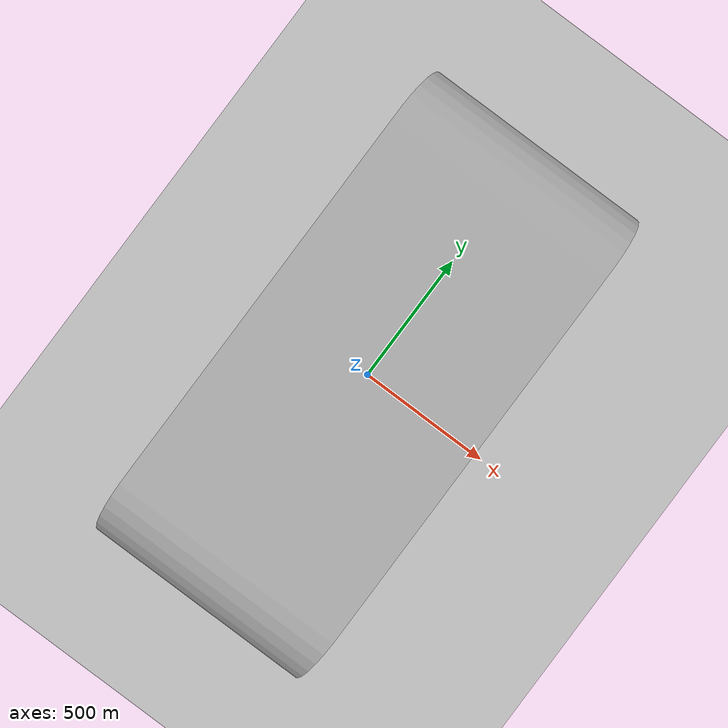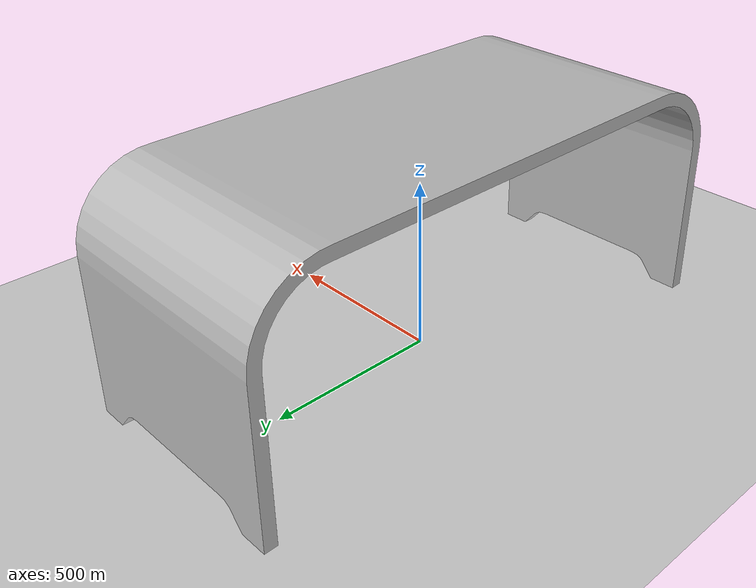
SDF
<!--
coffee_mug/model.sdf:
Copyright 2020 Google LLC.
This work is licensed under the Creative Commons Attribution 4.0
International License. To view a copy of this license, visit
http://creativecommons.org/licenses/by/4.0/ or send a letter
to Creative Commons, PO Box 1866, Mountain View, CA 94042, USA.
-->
<?xml version="1.0" ?>
<sdf version="1.6">
  <world name="visual_servoing">
    <physics name="default_physics" default="0" type="ode">
      <gravity>0 0 -9.8066</gravity>
      <ode>
        <solver>
          <iters>10</iters>
          <sor>1.3</sor>
        </solver>
      </ode>
      <max_step_size>0.01</max_step_size>
    </physics>

    <scene>
      <ambient>0.4 0.4 0.4</ambient>
      <background>0.7 0.7 0.7</background>
    </scene>

    <!-- Ground plane -->
    <include>
      <uri>model://ground plane</uri>
    </include>

    <!-- Sun -->
    <include>
      <uri>model://sun</uri>
    </include>

    <include>
      <uri>model://desk</uri>
      <pose>0 0.5 0 0 0 -1.5707963267</pose>
    </include>

    <include>
      <uri>model://coffee_mug</uri>
      <pose>0 0.4 0.6 0 0 0</pose>
    </include>

    <include>
      <uri>model://coke_can</uri>
      <pose>0.2 0.45 0.8 0 0 0</pose>
    </include>
  </world>
</sdf>

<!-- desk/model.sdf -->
<sdf version="1.5">
  <model name="desk">
    <link name="link">
      <pose>0 0 0 0 0 0</pose>

      <visual name="visual">
        <geometry>
          <mesh><uri>model://desk/meshes/desk.obj</uri></mesh>
        </geometry>
      </visual>

      <!-- 碰撞部分：用简单盒子近似 -->
      <!-- 桌面：扁盒，覆盖桌面区域 -->
      <collision name="tabletop">
        <pose>-0.014 0 0.530 0 0 0</pose>
        <geometry>
          <box>
            <size>0.491 0.844 0.043</size>
          </box>
        </geometry>
      </collision>

      <!-- 四条桌腿（延伸至桌面底部） -->
      <collision name="leg_front_left">
        <pose>-0.239 0.399 0.254 0 0 0</pose>   <!-- 中心高度 = 0.508/2 -->
        <geometry>
          <box>
            <size>0.08 0.08 0.508</size>        <!-- 稍粗一点，确保覆盖腿实际位置 -->
          </box>
        </geometry>
      </collision>

      <collision name="leg_front_right">
        <pose>0.211 0.399 0.254 0 0 0</pose>
        <geometry>
          <box>
            <size>0.08 0.08 0.508</size>
          </box>
        </geometry>
      </collision>

      <collision name="leg_back_left">
        <pose>-0.239 -0.399 0.254 0 0 0</pose>
        <geometry>
          <box>
            <size>0.08 0.08 0.508</size>
          </box>
        </geometry>
      </collision>

      <collision name="leg_back_right">
        <pose>0.211 -0.399 0.254 0 0 0</pose>
        <geometry>
          <box>
            <size>0.08 0.08 0.508</size>
          </box>
        </geometry>
      </collision>

    </link>
  </model>
</sdf>

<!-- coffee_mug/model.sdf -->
<sdf version="1.6">
  <model name="coffee_mug">
    <link name="link_0">
      <visual name="visual">
        <geometry>
          <mesh>
            <uri>meshes/model.obj</uri>
            <scale>0.5 0.5 0.5</scale>
          </mesh>
        </geometry>
      </visual>
      <collision name="collision_0">
        <geometry>
          <mesh>
            <uri>meshes/model.obj</uri>
            <scale>0.5 0.5 0.5</scale>
          </mesh>
        </geometry>
      </collision>
    </link>
  </model>
</sdf>

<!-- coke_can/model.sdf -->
<sdf version="1.5">
  <model name="coke_can">
    <link name="link">
      <inertial>
        <pose>0 0 0.06 0 0 0</pose>
        <mass>0.390</mass>
        <inertia>
          <ixx>0.00055575</ixx>
          <ixy>0</ixy>
          <ixz>0</ixz>
          <iyy>0.00055575</iyy>
          <iyz>0</iyz>
          <izz>0.0001755</izz>
        </inertia>
      </inertial>
      <collision name="collision">
        <pose>0.003937 0.0047244 -0.18 0 0 0</pose>
        <geometry>
          <mesh>
            <uri>model://coke_can/meshes/coke_can.dae</uri>
          </mesh>
        </geometry>
        <surface>
          <friction>
            <ode>
              <mu>1.0</mu>
              <mu2>1.0</mu2>
            </ode>
          </friction>
          <contact>
            <ode>
              <kp>10000000.0</kp>
              <kd>1.0</kd>
              <min_depth>0.001</min_depth>
              <max_vel>0.1</max_vel>
            </ode>
          </contact>
        </surface>
      </collision>
      <visual name="visual">
        <pose>0.003937 0.0047244 -0.18 0 0 0</pose>
        <geometry>
          <mesh>
            <uri>model://coke_can/meshes/coke_can.dae</uri>
          </mesh>
        </geometry>
      </visual>
    </link>
  </model>
</sdf>
